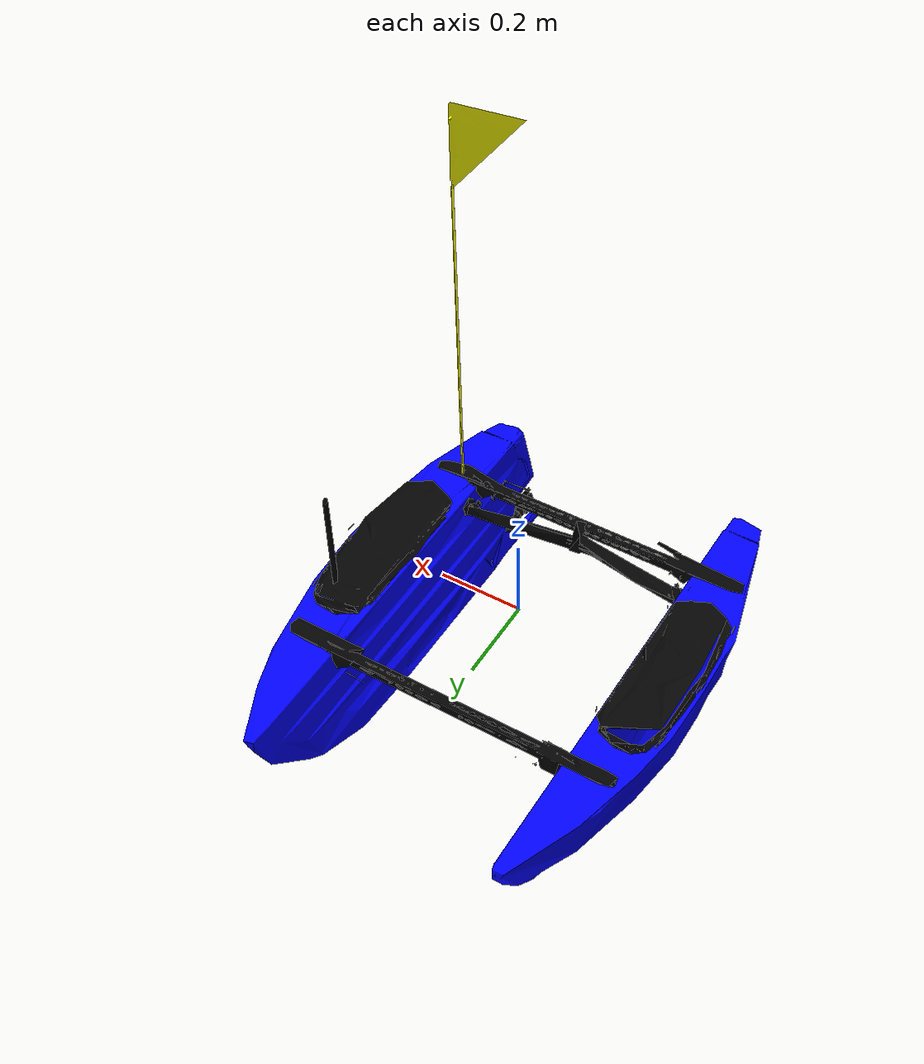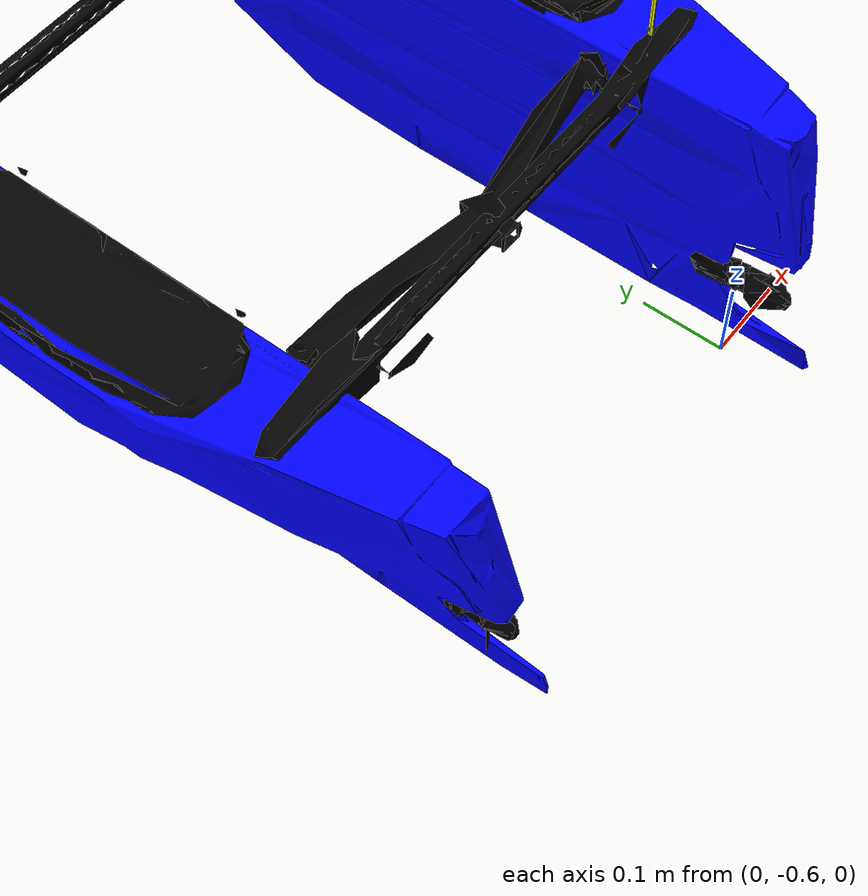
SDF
<sdf version="1.6">
 <world name="waves">
  <physics name="4ms" type="ignored">
   <max_step_size>0.004</max_step_size>
   <real_time_factor>1.0</real_time_factor>
  </physics>
  <plugin filename="gz-sim-physics-system" name="gz::sim::systems::Physics"/>
  <plugin filename="gz-sim-scene-broadcaster-system" name="gz::sim::systems::SceneBroadcaster"/>
  <plugin filename="gz-sim-user-commands-system" name="gz::sim::systems::UserCommands"/>
  <plugin filename="gz-sim-imu-system" name="gz::sim::systems::Imu"/>
  <plugin filename="gz-sim-navsat-system" name="gz::sim::systems::NavSat"/>
  <spherical_coordinates>
   <surface_model>EARTH_WGS84</surface_model>
   <world_frame_orientation>ENU</world_frame_orientation>
   <latitude_deg>40.2386</latitude_deg>
   <longitude_deg>-111.8000</longitude_deg>
   <elevation>1368.0</elevation>
   <heading_deg>0</heading_deg>
  </spherical_coordinates>
  <scene><ambient>1.0 1.0 1.0</ambient><background>0.8 0.8 0.8</background></scene>
  <light type="directional" name="sun">
   <pose>0 0 10 0 0 0</pose>
   <diffuse>0.8 0.8 0.8 1</diffuse>
   <specular>0.6 0.6 0.6 1</specular>
   <direction>-0.5 0.1 -0.9</direction>
  </light>
  <include>
   <pose degrees="true">0 0 0 0 0 90</pose>
   <name>blueboat</name>
   <uri>model://blueboat_lite</uri>
  </include>
 </world>
</sdf>

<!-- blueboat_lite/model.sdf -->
<sdf version="1.9">
  <model name="blueboat">
    <link name="base_link">
      <inertial>
        <pose>-0.05 0 -0.15 0 0 0</pose>
        <mass>30.0</mass>
        <inertia>
          <ixx>2.42369</ixx>
          <ixy>0</ixy>
          <ixz>0</ixz>
          <iyy>3.9235025</iyy>
          <iyz>0</iyz>
          <izz>5.6403125</izz>
        </inertia>
      </inertial>
      <collision name="hull_collision">
        <geometry>
          <mesh>
            <uri>model://blueboat/meshes/blueboat_hull_collision.stl</uri>
          </mesh>
        </geometry>
      </collision>
      <visual name="hull_visual">
        <geometry>
          <mesh>
            <uri>model://blueboat_lite/meshes/blueboat_hull.stl</uri>
          </mesh>
        </geometry>
        <material>
          <diffuse>0 0 1 1</diffuse>
          <ambient>0 0 0.6 1</ambient>  <!-- upstream: 1 0 1 (magenta), hidden by its .dae materials -->
          <specular>0.7 0.7 0.7 1</specular>
          <pbr>
            <metal>
              <metalness>0.5</metalness>
              <roughness>0.5</roughness>
            </metal>
          </pbr>
        </material>
      </visual>
      <visual name="aerial_visual">
        <geometry>
          <mesh>
            <uri>model://blueboat_lite/meshes/blueboat_aerial.stl</uri>
          </mesh>
        </geometry>
        <material>
          <diffuse>0.01 0.01 0.01 1</diffuse>
          <ambient>0.01 0.01 0.01 1</ambient>
          <specular>0.7 0.7 0.7 1</specular>
          <pbr>
            <metal>
              <metalness>0.5</metalness>
              <roughness>0.5</roughness>
            </metal>
          </pbr>
        </material>
      </visual>
      <visual name="crosstube_visual">
        <geometry>
          <mesh>
            <uri>model://blueboat_lite/meshes/blueboat_crosstube.stl</uri>
          </mesh>
        </geometry>
        <material>
          <diffuse>0.01 0.01 0.01 1</diffuse>
          <ambient>0.01 0.01 0.01 1</ambient>
          <specular>0.7 0.7 0.7 1</specular>
          <pbr>
            <metal>
              <metalness>0.5</metalness>
              <roughness>0.5</roughness>
            </metal>
          </pbr>
        </material>
      </visual>
      <visual name="flag_visual">
        <geometry>
          <mesh>
            <uri>model://blueboat_lite/meshes/blueboat_flag.stl</uri>
          </mesh>
        </geometry>
        <material>
          <diffuse>1 1 0 1</diffuse>
          <ambient>1 1 0 1</ambient>
          <specular>0.7 0.7 0.7 1</specular>
          <pbr>
            <metal>
              <metalness>0.5</metalness>
              <roughness>0.5</roughness>
            </metal>
          </pbr>
        </material>
      </visual>
      <visual name="frame_asm_fore_visual">
        <geometry>
          <mesh>
            <uri>model://blueboat_lite/meshes/blueboat_frame_asm_fore.stl</uri>
          </mesh>
        </geometry>
        <material>
          <diffuse>0.01 0.01 0.01 1</diffuse>
          <ambient>0.01 0.01 0.01 1</ambient>
          <specular>0.7 0.7 0.7 1</specular>
          <pbr>
            <metal>
              <metalness>0.9</metalness>
              <roughness>0.1</roughness>
            </metal>
          </pbr>
        </material>
      </visual>
      <visual name="frame_asm_aft_visual">
        <geometry>
          <mesh>
            <uri>model://blueboat_lite/meshes/blueboat_frame_asm_aft.stl</uri>
          </mesh>
        </geometry>
        <material>
          <diffuse>0.01 0.01 0.01 1</diffuse>
          <ambient>0.01 0.01 0.01 1</ambient>
          <specular>0.7 0.7 0.7 1</specular>
          <pbr>
            <metal>
              <metalness>0.9</metalness>
              <roughness>0.1</roughness>
            </metal>
          </pbr>
        </material>
      </visual>
      <visual name="hatch_asm_stbd">
        <geometry>
          <mesh>
            <uri>model://blueboat_lite/meshes/blueboat_hatch_asm_stbd.stl</uri>
          </mesh>
        </geometry>
        <material>
          <diffuse>0.01 0.01 0.01 1</diffuse>
          <ambient>0.01 0.01 0.01 1</ambient>
          <specular>0.7 0.7 0.7 1</specular>
          <pbr>
            <metal>
              <metalness>0.5</metalness>
              <roughness>0.5</roughness>
            </metal>
          </pbr>
        </material>
      </visual>
      <visual name="hatch_asm_port">
        <geometry>
          <mesh>
            <uri>model://blueboat_lite/meshes/blueboat_hatch_asm_port.stl</uri>
          </mesh>
        </geometry>
        <material>
          <diffuse>0.01 0.01 0.01 1</diffuse>
          <ambient>0.01 0.01 0.01 1</ambient>
          <specular>0.7 0.7 0.7 1</specular>
          <pbr>
            <metal>
              <metalness>0.5</metalness>
              <roughness>0.5</roughness>
            </metal>
          </pbr>
        </material>
      </visual>
      <visual name="motor_stbd_visual">
        <geometry>
          <mesh>
            <uri>model://blueboat_lite/meshes/blueboat_motor_stbd.stl</uri>
          </mesh>
        </geometry>
        <material>
          <diffuse>0.01 0.01 0.01 1</diffuse>
          <ambient>0.01 0.01 0.01 1</ambient>
          <specular>0.7 0.7 0.7 1</specular>
          <pbr>
            <metal>
              <metalness>0.5</metalness>
              <roughness>0.5</roughness>
            </metal>
          </pbr>
        </material>
      </visual>
      <visual name="motor_port_visual">
        <geometry>
          <mesh>
            <uri>model://blueboat_lite/meshes/blueboat_motor_port.stl</uri>
          </mesh>
        </geometry>
        <material>
          <diffuse>0.01 0.01 0.01 1</diffuse>
          <ambient>0.01 0.01 0.01 1</ambient>
          <specular>0.7 0.7 0.7 1</specular>
          <pbr>
            <metal>
              <metalness>0.5</metalness>
              <roughness>0.5</roughness>
            </metal>
          </pbr>
        </material>
      </visual>
    </link>

    <link name="motor_stbd_link">
      <pose degrees="true">-0.488 -0.295 -0.272 -90 0 90</pose>
      <inertial>
        <mass>0.2</mass>
        <inertia>
          <ixx>0.1</ixx>
          <ixy>0</ixy>
          <ixz>0</ixz>
          <iyy>0.1</iyy>
          <iyz>0</iyz>
          <izz>0.1</izz>
        </inertia>
      </inertial>
      <collision name="prop_collision">
        <geometry>
          <mesh>
            <uri>model://blueboat_lite/meshes/blueboat_prop_stbd.stl</uri>
          </mesh>
        </geometry>
      </collision>
      <visual name="prop_visual">
        <geometry>
          <mesh>
            <uri>model://blueboat_lite/meshes/blueboat_prop_stbd.stl</uri>
          </mesh>
        </geometry>
        <material>
          <diffuse>0.01 0.01 0.01 1</diffuse>
          <ambient>0.01 0.01 0.01 1</ambient>
          <specular>0.7 0.7 0.7 1</specular>
          <pbr>
            <metal>
              <metalness>0.5</metalness>
              <roughness>0.5</roughness>
            </metal>
          </pbr>
        </material>
      </visual>
    </link>
    <joint name="motor_stbd_joint" type="revolute">
      <parent>base_link</parent>
      <child>motor_stbd_link</child>
      <axis>
        <xyz>0 0 -1</xyz>
        <limit>
          <lower>-1e16</lower>
          <upper>1e16</upper>
        </limit>
        <dynamics>
          <damping>0.02</damping>
        </dynamics>
      </axis>
    </joint>

    <link name="motor_port_link">
      <pose degrees="true">-0.488 0.295 -0.272 -90 0 90</pose>
      <inertial>
        <mass>0.2</mass>
        <inertia>
          <ixx>0.1</ixx>
          <ixy>0</ixy>
          <ixz>0</ixz>
          <iyy>0.1</iyy>
          <iyz>0</iyz>
          <izz>0.1</izz>
        </inertia>
      </inertial>
      <collision name="prop_collision">
        <geometry>
          <mesh>
            <uri>model://blueboat_lite/meshes/blueboat_prop_port.stl</uri>
          </mesh>
        </geometry>
      </collision>
      <visual name="prop_visual">
        <geometry>
          <mesh>
            <uri>model://blueboat_lite/meshes/blueboat_prop_port.stl</uri>
          </mesh>
        </geometry>
        <material>
          <diffuse>0.01 0.01 0.01 1</diffuse>
          <ambient>0.01 0.01 0.01 1</ambient>
          <specular>0.7 0.7 0.7 1</specular>
          <pbr>
            <metal>
              <metalness>0.5</metalness>
              <roughness>0.5</roughness>
            </metal>
          </pbr>
        </material>
      </visual>
    </link>
    <joint name="motor_port_joint" type="revolute">
      <parent>base_link</parent>
      <child>motor_port_link</child>
      <axis>
        <xyz>0 0 -1</xyz>
        <limit>
          <lower>-1e16</lower>
          <upper>1e16</upper>
        </limit>
        <dynamics>
          <damping>0.02</damping>
        </dynamics>
      </axis>
    </joint>

    <!-- sensors -->
    <link name="imu_link">
      <inertial>
        <pose>0 0 0 0 0 0</pose>
        <mass>0.1</mass>
        <inertia>
          <ixx>0.0001</ixx>
          <ixy>0</ixy>
          <ixz>0</ixz>
          <iyy>0.0001</iyy>
          <iyz>0</iyz>
          <izz>0.0001</izz>
        </inertia>
      </inertial>
      <sensor name="imu_sensor" type="imu">
        <pose degrees="true">0 0 0 180 0 0</pose>
        <always_on>1</always_on>
        <update_rate>1000.0</update_rate>
      </sensor>
    </link>
    <joint name="imu_joint" type="revolute">
      <child>imu_link</child>
      <parent>base_link</parent>
      <axis>
        <xyz>0 0 1</xyz>
        <limit>
          <lower>0</lower>
          <upper>0</upper>
        </limit>
        <dynamics>
          <damping>1.0</damping>
        </dynamics>
      </axis>
    </joint>

    <!-- plugins -->
    <plugin name="gz::sim::systems::JointStatePublisher"
      filename="gz-sim-joint-state-publisher-system">
    </plugin>
    <plugin name="gz::sim::systems::OdometryPublisher"
      filename="gz-sim-odometry-publisher-system">
      <odom_frame>odom</odom_frame>
      <robot_base_frame>base_link</robot_base_frame>
      <dimensions>3</dimensions>
    </plugin>

    <!-- left motor thruster cw -->
    <plugin name="gz::sim::systems::Thruster"
      filename="gz-sim-thruster-system">
      <namespace>blueboat</namespace>
      <joint_name>motor_port_joint</joint_name>
      <thrust_coefficient>-0.02</thrust_coefficient>
      <fluid_density>1025</fluid_density>
      <propeller_diameter>0.112</propeller_diameter>
      <velocity_control>0</velocity_control>
      <use_angvel_cmd>0</use_angvel_cmd>
    </plugin>

    <!-- right motor thruster ccw -->
    <plugin name="gz::sim::systems::Thruster"
      filename="gz-sim-thruster-system">
      <namespace>blueboat</namespace>
      <joint_name>motor_stbd_joint</joint_name>
      <thrust_coefficient>0.02</thrust_coefficient>
      <fluid_density>1025</fluid_density>
      <propeller_diameter>0.112</propeller_diameter>
      <velocity_control>0</velocity_control>
      <use_angvel_cmd>0</use_angvel_cmd>
    </plugin>

    <!-- hydrodynamics plugin -->
    <plugin name="gz::sim::systems::Hydrodynamics"
        filename="gz-waves1-hydrodynamics-system">
        <enable>blueboat::base_link</enable>
        <hydrodynamics>
          <damping_on>1</damping_on>
          <viscous_drag_on>1</viscous_drag_on>
          <pressure_drag_on>1</pressure_drag_on>
        </hydrodynamics>
    </plugin>

      <!-- ardupilot plugin -->
    <plugin name="ArduPilotPlugin"
      filename="ArduPilotPlugin">
      <fdm_addr>127.0.0.1</fdm_addr>
      <fdm_port_in>9002</fdm_port_in>
      <connectionTimeoutMaxCount>5</connectionTimeoutMaxCount>
      <lock_step>1</lock_step>
      <gazeboXYZToNED degrees="true">0 0 0 180 0 90</gazeboXYZToNED>
      <modelXYZToAirplaneXForwardZDown degrees="true">0 0 0 180 0 0</modelXYZToAirplaneXForwardZDown>
      <imuName>imu_link::imu_sensor</imuName>

      <!--
        port motor cw

        SERVO1_FUNCTION 73 (ThrottleLeft)
        SERVO1_MAX 2000
        SERVO1_MIN 1000
      -->
      <control channel="0">
        <jointName>motor_port_joint</jointName>
        <multiplier>70</multiplier>
        <offset>-0.5</offset>
        <servo_min>1000</servo_min>
        <servo_max>2000</servo_max>
        <type>COMMAND</type>
        <cmd_topic>/model/blueboat/joint/motor_port_joint/cmd_thrust</cmd_topic>
      </control>

      <!--
        stbd motor ccw

        SERVO3_FUNCTION 74 (ThrottleRight)
        SERVO3_MAX 2000
        SERVO3_MIN 1000
      -->
      <control channel="2">
        <jointName>motor_stbd_joint</jointName>
        <multiplier>70</multiplier>
        <offset>-0.5</offset>
        <servo_min>1000</servo_min>
        <servo_max>2000</servo_max>
        <type>COMMAND</type>
        <cmd_topic>/model/blueboat/joint/motor_stbd_joint/cmd_thrust</cmd_topic>
      </control>
    </plugin>

  </model>
</sdf>
